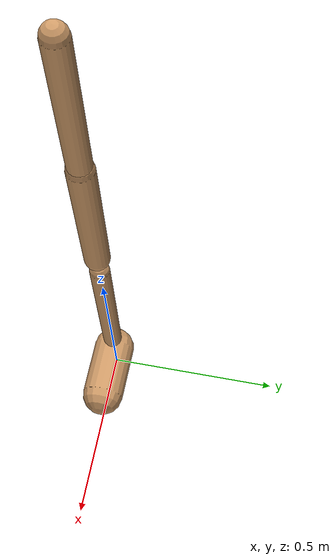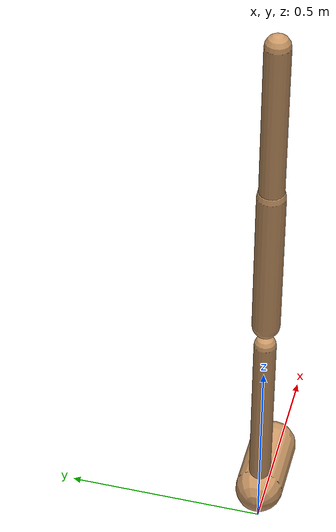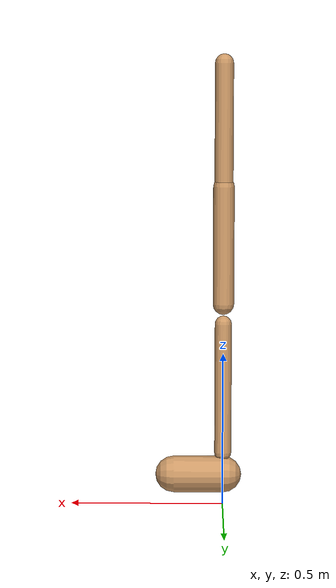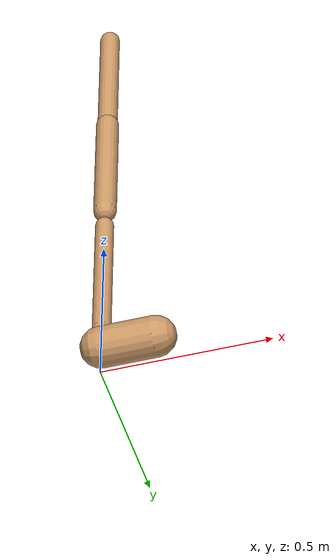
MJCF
<mujoco model="walker2d">
  <compiler angle="degree" coordinate="global" inertiafromgeom="true" />
  <default>
    <joint armature="0.01" damping=".1" limited="true" />
    <geom conaffinity="0" condim="3" contype="1" density="1000" friction="0.8 .1 .1" rgba="0.8 0.6 .4 1" />
  </default>
  <option integrator="RK4" timestep="0.002" />
  <worldbody>

    <body name="torso" pos="0 0 -0.13878489389955043">
      <joint armature="0" axis="1 0 0" damping="0" limited="false" name="ignorex" pos="0 0 0" stiffness="0" type="slide" />
      <joint armature="0" axis="0 0 1" damping="0" limited="false" name="ignorez" pos="0 0 0" ref="1.25" stiffness="0" type="slide" />
      <joint armature="0" axis="0 1 0" damping="0" limited="false" name="ignorey" pos="0 0 0" stiffness="0" type="hinge" />
      <geom fromto="0 0 1.45 0 0 1.05" name="torso_geom" size="0.030232682298172865" type="capsule" />
      <body name="thigh">
        <joint axis="0 -1 0" name="thigh_joint" pos="0 0 1.05" range="-150 0" type="hinge" />
        <geom fromto="0.0 0.0 1.05 0.0 0.0 0.665740212899787" name="thigh_geom" size="0.03441177790272772" type="capsule" />
        <body name="leg" pos="0.0 0.0 0.06574021289978704">
          <joint axis="0 -1 0" name="leg_joint" pos="0 0 0.6" range="-150 0" type="hinge" />
          <geom fromto="0.0 0.0 0.6 0.0 0.0 0.1730446809997634" name="leg_geom" size="0.027529422322182175" type="capsule" />
          <body name="foot" pos="0.0 0.0 0.07304468099976338">
            <joint axis="0 -1 0" name="foot_joint" pos="0 0 0.1" range="-45 45" type="hinge" />
            <geom fromto="0.0 0.0 0.1 0.16126325269250208 0.0 0.1" name="foot_geom" size="0.06066806368172822" type="capsule" />
          </body>
        </body>
      </body>

      <body name="thigh_left">
        <joint axis="0 -1 0" name="thigh_left_joint" pos="0 0 1.05" range="-150 0" type="hinge" />
        <geom fromto="0.0 0.0 1.05 0.0 0.0 0.665740212899787" name="thigh_left_geom" rgba=".7 .3 .6 1" size="0.03441177790272772" type="capsule" />
        <body name="leg_left" pos="0.0 0.0 0.06574021289978704">
          <joint axis="0 -1 0" name="leg_left_joint" pos="0 0 0.6" range="-150 0" type="hinge" />
          <geom fromto="0.0 0.0 0.6 0.0 0.0 0.1730446809997634" name="leg_left_geom" rgba=".7 .3 .6 1" size="0.027529422322182175" type="capsule" />
          <body name="foot_left" pos="0.0 0.0 0.07304468099976338">
            <joint axis="0 -1 0" name="foot_left_joint" pos="0 0 0.1" range="-45 45" type="hinge" />
            <geom fromto="0.0 0.0 0.1 0.16126325269250208 0.0 0.1" name="foot_left_geom" rgba=".7 .3 .6 1" size="0.06066806368172822" type="capsule" />
          </body>
        </body>
      </body>
    </body>
  </worldbody>
  <actuator>

    <motor ctrllimited="true" ctrlrange="-1.0 1.0" gear="100" joint="thigh_joint" />
    <motor ctrllimited="true" ctrlrange="-1.0 1.0" gear="100" joint="leg_joint" />
    <motor ctrllimited="true" ctrlrange="-1.0 1.0" gear="100" joint="foot_joint" />
    <motor ctrllimited="true" ctrlrange="-1.0 1.0" gear="100" joint="thigh_left_joint" />
    <motor ctrllimited="true" ctrlrange="-1.0 1.0" gear="100" joint="leg_left_joint" />
    <motor ctrllimited="true" ctrlrange="-1.0 1.0" gear="100" joint="foot_left_joint" />

  </actuator>
</mujoco>
